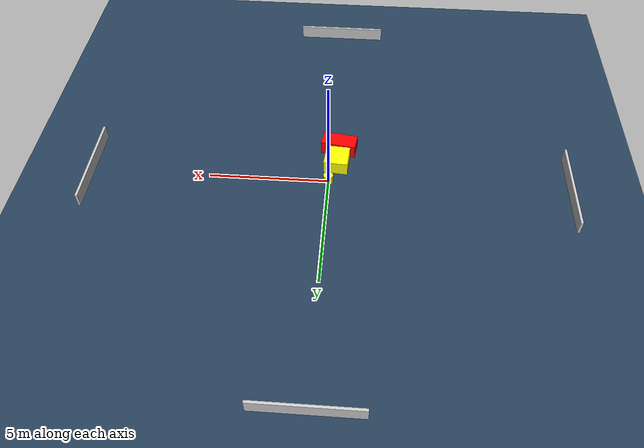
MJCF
<?xml version="1.0" ?>
<mujoco model="generated_environment">
  <option timestep="0.01" integrator="RK4" cone="elliptic"/>
  <default>
    <geom density="1"/>
  </default>
  <asset>
    <texture builtin="gradient" height="3072" name="skybox" rgb1="0.3 0.5 0.7" rgb2="0 0 0" type="skybox" width="512"/>
    <texture builtin="checker" height="300" name="groundplane" rgb1="0.2 0.3 0.4" rgb2="0.1 0.2 0.3" type="2d" width="300"/>
    <material name="groundplane" reflectance="0.2" texrepeat="5 5" texture="groundplane"/>
  </asset>
  <worldbody>
    <light dir="0 0 -1" directional="true" pos="0 0 1.5"/>
    <geom condim="3" friction="0.5 0.005 0.001" material="groundplane" name="floor" pos="0 0 0" size="0 0 0.05" type="plane"/>
    <body name="walls">
      <geom name="wall_1" condim="4" pos="-10.0 0.0 0.3" rgba="0.800000011920929 0.800000011920929 0.800000011920929 1.0" size="0.05 2.0 0.3" type="box"/>
      <geom name="wall_2" condim="4" pos="10.0 0.0 0.3" rgba="0.800000011920929 0.800000011920929 0.800000011920929 1.0" size="0.05 2.0 0.3" type="box"/>
      <geom name="wall_3" condim="4" pos="0.0 -10.0 0.3" rgba="0.800000011920929 0.800000011920929 0.800000011920929 1.0" size="2.0 0.05 0.3" type="box"/>
      <geom name="wall_4" condim="4" pos="0.0 10.0 0.3" rgba="0.800000011920929 0.800000011920929 0.800000011920929 1.0" size="2.0 0.05 0.3" type="box"/>
    </body>
    <body name="robot">
      <joint name="joint_x" type="slide" pos="0 0 0" axis="1 0 0"/>
      <joint name="joint_y" type="slide" pos="0 0 0" axis="0 1 0"/>
      <geom name="robot" type="cylinder" pos="0.0 0.0 0.2" size="0.2 0.2 0.0" mass="5.0" friction="1.0 0.005 0.0001" condim="4" rgba="1.0 1.0 0.0 1.0"/>
    </body>
    <body name="obstacle_1_movable">
      <geom name="obstacle_1_movable" condim="4" pos="-0.3029950462612693 -0.9881607775897328 0.3" euler="0 0 266.2062856100628" friction="0.0 0.005 0.001" rgba="1.0 1.0 0.0 1.0" size="0.5103259451917472 0.5046808626500239 0.3" type="box" mass="0.1"/>
      <joint type="free"/>
    </body>
    <body name="obstacle_2_static">
      <geom name="obstacle_2_static" condim="4" pos="-0.34749080485052475 -1.9211463736550327 0.3" euler="0 0 261.8533692933838" friction="0.0 0.005 0.001" rgba="1.0 0.0 0.0 1.0" size="0.34962247760548615 0.7400284138195339 0.3" type="box"/>
    </body>
  </worldbody>
  <actuator>
    <motor name="actuator_x" joint="joint_x" gear="1" ctrlrange="-1 1"/>
    <motor name="actuator_y" joint="joint_y" gear="1" ctrlrange="-1 1"/>
  </actuator>
</mujoco>
